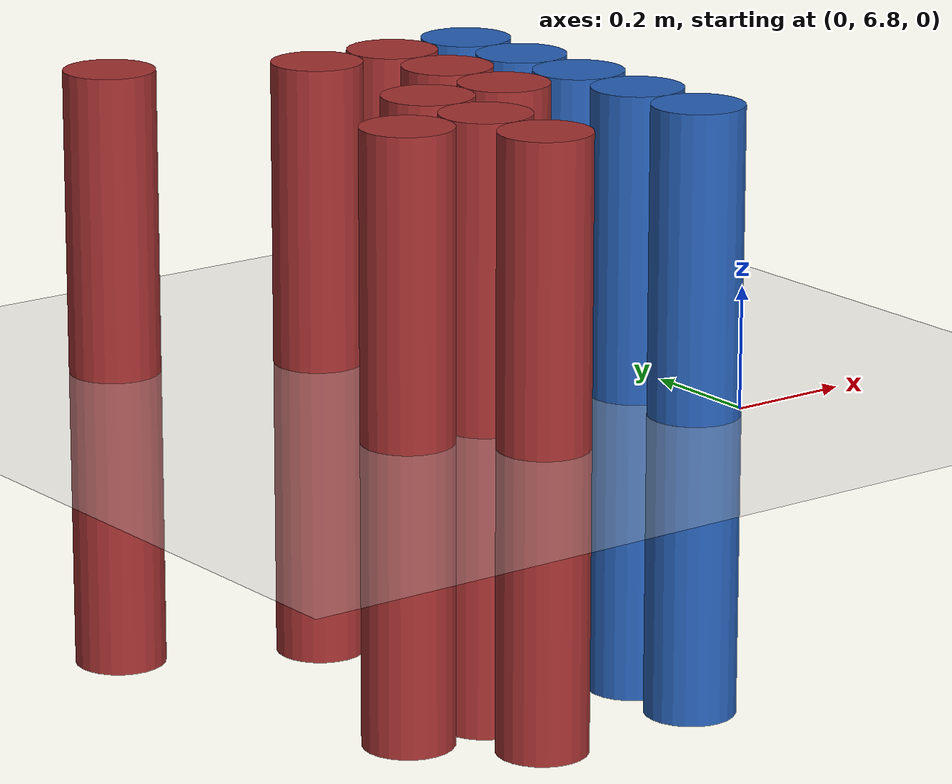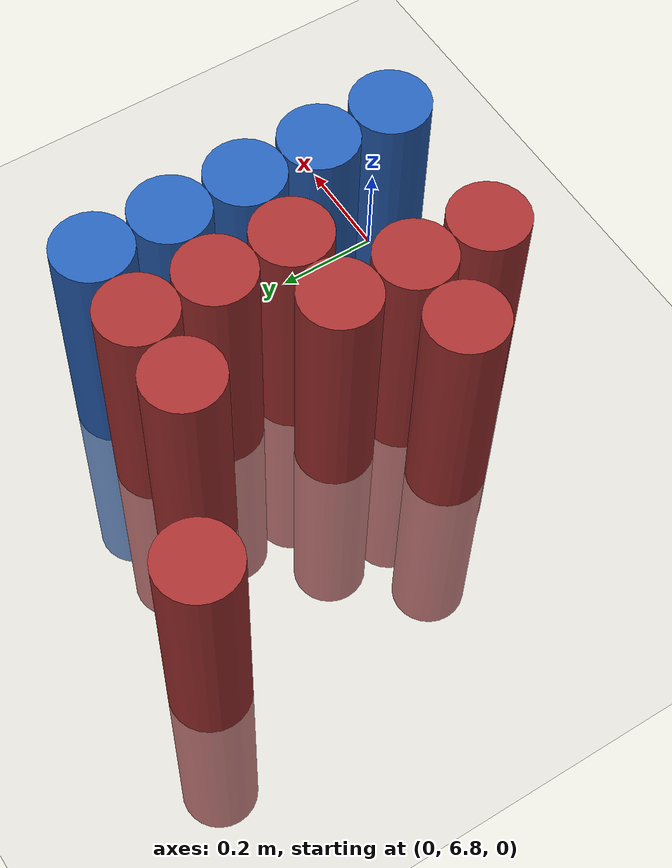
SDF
<sdf version="1.6">
 <world name="default">
  <model name="ground_plane">
   <static>1</static>
   <link name="link">
    <collision name="collision">
     <geometry><plane><normal>0 0 1</normal><size>100 100</size></plane></geometry>
     <surface><friction><ode><mu>100</mu><mu2>50</mu2></ode></friction></surface>
    </collision>
    <visual name="visual">
     <cast_shadows>0</cast_shadows>
     <geometry><plane><normal>0 0 1</normal><size>100 100</size></plane></geometry>
     <material>
      <script><uri>file://media/materials/scripts/gazebo.material</uri><name>Gazebo/Grey</name></script>
     </material>
    </visual>
   </link>
  </model>
  <model name="unit_cylinder_160">
   <static>1</static>
   <pose>-0.675000 7.575000 0.000000 0.000000 0.000000 0.000000</pose>
   <link name="link">
    <inertial>
     <mass>1</mass>
     <inertia><ixx>0.145833</ixx><ixy>0</ixy><ixz>0</ixz><iyy>0.145833</iyy><iyz>0</iyz><izz>0.125</izz></inertia>
    </inertial>
    <collision name="collision">
     <geometry><cylinder><radius>0.075000</radius><length>1</length></cylinder></geometry>
    </collision>
    <visual name="visual">
     <geometry><cylinder><radius>0.075000</radius><length>1</length></cylinder></geometry>
     <material>
      <ambient>0.648000 0.192000 0.192000 1</ambient>
      <diffuse>0.648000 0.192000 0.192000 1</diffuse>
     </material>
     <material>
      <script><name>Gazebo/Grey</name><uri>file://media/materials/scripts/gazebo.material</uri></script>
     </material>
    </visual>
   </link>
  </model>
  <model name="unit_cylinder_165">
   <static>1</static>
   <pose>-0.525000 6.975000 0.000000 0.000000 0.000000 0.000000</pose>
   <link name="link">
    <inertial>
     <mass>1</mass>
     <inertia><ixx>0.145833</ixx><ixy>0</ixy><ixz>0</ixz><iyy>0.145833</iyy><iyz>0</iyz><izz>0.125</izz></inertia>
    </inertial>
    <collision name="collision">
     <geometry><cylinder><radius>0.075000</radius><length>1</length></cylinder></geometry>
    </collision>
    <visual name="visual">
     <geometry><cylinder><radius>0.075000</radius><length>1</length></cylinder></geometry>
     <material>
      <ambient>0.648000 0.192000 0.192000 1</ambient>
      <diffuse>0.648000 0.192000 0.192000 1</diffuse>
     </material>
     <material>
      <script><name>Gazebo/Grey</name><uri>file://media/materials/scripts/gazebo.material</uri></script>
     </material>
    </visual>
   </link>
  </model>
  <model name="unit_cylinder_171">
   <static>1</static>
   <pose>-0.375000 6.825000 0.000000 0.000000 0.000000 0.000000</pose>
   <link name="link">
    <inertial>
     <mass>1</mass>
     <inertia><ixx>0.145833</ixx><ixy>0</ixy><ixz>0</ixz><iyy>0.145833</iyy><iyz>0</iyz><izz>0.125</izz></inertia>
    </inertial>
    <collision name="collision">
     <geometry><cylinder><radius>0.075000</radius><length>1</length></cylinder></geometry>
    </collision>
    <visual name="visual">
     <geometry><cylinder><radius>0.075000</radius><length>1</length></cylinder></geometry>
     <material>
      <ambient>0.648000 0.192000 0.192000 1</ambient>
      <diffuse>0.648000 0.192000 0.192000 1</diffuse>
     </material>
     <material>
      <script><name>Gazebo/Grey</name><uri>file://media/materials/scripts/gazebo.material</uri></script>
     </material>
    </visual>
   </link>
  </model>
  <model name="unit_cylinder_172">
   <static>1</static>
   <pose>-0.375000 6.975000 0.000000 0.000000 0.000000 0.000000</pose>
   <link name="link">
    <inertial>
     <mass>1</mass>
     <inertia><ixx>0.145833</ixx><ixy>0</ixy><ixz>0</ixz><iyy>0.145833</iyy><iyz>0</iyz><izz>0.125</izz></inertia>
    </inertial>
    <collision name="collision">
     <geometry><cylinder><radius>0.075000</radius><length>1</length></cylinder></geometry>
    </collision>
    <visual name="visual">
     <geometry><cylinder><radius>0.075000</radius><length>1</length></cylinder></geometry>
     <material>
      <ambient>0.648000 0.192000 0.192000 1</ambient>
      <diffuse>0.648000 0.192000 0.192000 1</diffuse>
     </material>
     <material>
      <script><name>Gazebo/Grey</name><uri>file://media/materials/scripts/gazebo.material</uri></script>
     </material>
    </visual>
   </link>
  </model>
  <model name="unit_cylinder_173">
   <static>1</static>
   <pose>-0.375000 7.125000 0.000000 0.000000 0.000000 0.000000</pose>
   <link name="link">
    <inertial>
     <mass>1</mass>
     <inertia><ixx>0.145833</ixx><ixy>0</ixy><ixz>0</ixz><iyy>0.145833</iyy><iyz>0</iyz><izz>0.125</izz></inertia>
    </inertial>
    <collision name="collision">
     <geometry><cylinder><radius>0.075000</radius><length>1</length></cylinder></geometry>
    </collision>
    <visual name="visual">
     <geometry><cylinder><radius>0.075000</radius><length>1</length></cylinder></geometry>
     <material>
      <ambient>0.648000 0.192000 0.192000 1</ambient>
      <diffuse>0.648000 0.192000 0.192000 1</diffuse>
     </material>
     <material>
      <script><name>Gazebo/Grey</name><uri>file://media/materials/scripts/gazebo.material</uri></script>
     </material>
    </visual>
   </link>
  </model>
  <model name="unit_cylinder_174">
   <static>1</static>
   <pose>-0.375000 7.425000 0.000000 0.000000 0.000000 0.000000</pose>
   <link name="link">
    <inertial>
     <mass>1</mass>
     <inertia><ixx>0.145833</ixx><ixy>0</ixy><ixz>0</ixz><iyy>0.145833</iyy><iyz>0</iyz><izz>0.125</izz></inertia>
    </inertial>
    <collision name="collision">
     <geometry><cylinder><radius>0.075000</radius><length>1</length></cylinder></geometry>
    </collision>
    <visual name="visual">
     <geometry><cylinder><radius>0.075000</radius><length>1</length></cylinder></geometry>
     <material>
      <ambient>0.648000 0.192000 0.192000 1</ambient>
      <diffuse>0.648000 0.192000 0.192000 1</diffuse>
     </material>
     <material>
      <script><name>Gazebo/Grey</name><uri>file://media/materials/scripts/gazebo.material</uri></script>
     </material>
    </visual>
   </link>
  </model>
  <model name="unit_cylinder_185">
   <static>1</static>
   <pose>-0.225000 7.125000 0.000000 0.000000 0.000000 0.000000</pose>
   <link name="link">
    <inertial>
     <mass>1</mass>
     <inertia><ixx>0.145833</ixx><ixy>0</ixy><ixz>0</ixz><iyy>0.145833</iyy><iyz>0</iyz><izz>0.125</izz></inertia>
    </inertial>
    <collision name="collision">
     <geometry><cylinder><radius>0.075000</radius><length>1</length></cylinder></geometry>
    </collision>
    <visual name="visual">
     <geometry><cylinder><radius>0.075000</radius><length>1</length></cylinder></geometry>
     <material>
      <ambient>0.648000 0.192000 0.192000 1</ambient>
      <diffuse>0.648000 0.192000 0.192000 1</diffuse>
     </material>
     <material>
      <script><name>Gazebo/Grey</name><uri>file://media/materials/scripts/gazebo.material</uri></script>
     </material>
    </visual>
   </link>
  </model>
  <model name="unit_cylinder_186">
   <static>1</static>
   <pose>-0.225000 7.275000 0.000000 0.000000 0.000000 0.000000</pose>
   <link name="link">
    <inertial>
     <mass>1</mass>
     <inertia><ixx>0.145833</ixx><ixy>0</ixy><ixz>0</ixz><iyy>0.145833</iyy><iyz>0</iyz><izz>0.125</izz></inertia>
    </inertial>
    <collision name="collision">
     <geometry><cylinder><radius>0.075000</radius><length>1</length></cylinder></geometry>
    </collision>
    <visual name="visual">
     <geometry><cylinder><radius>0.075000</radius><length>1</length></cylinder></geometry>
     <material>
      <ambient>0.648000 0.192000 0.192000 1</ambient>
      <diffuse>0.648000 0.192000 0.192000 1</diffuse>
     </material>
     <material>
      <script><name>Gazebo/Grey</name><uri>file://media/materials/scripts/gazebo.material</uri></script>
     </material>
    </visual>
   </link>
  </model>
  <model name="unit_cylinder_187">
   <static>1</static>
   <pose>-0.225000 7.425000 0.000000 0.000000 0.000000 0.000000</pose>
   <link name="link">
    <inertial>
     <mass>1</mass>
     <inertia><ixx>0.145833</ixx><ixy>0</ixy><ixz>0</ixz><iyy>0.145833</iyy><iyz>0</iyz><izz>0.125</izz></inertia>
    </inertial>
    <collision name="collision">
     <geometry><cylinder><radius>0.075000</radius><length>1</length></cylinder></geometry>
    </collision>
    <visual name="visual">
     <geometry><cylinder><radius>0.075000</radius><length>1</length></cylinder></geometry>
     <material>
      <ambient>0.648000 0.192000 0.192000 1</ambient>
      <diffuse>0.648000 0.192000 0.192000 1</diffuse>
     </material>
     <material>
      <script><name>Gazebo/Grey</name><uri>file://media/materials/scripts/gazebo.material</uri></script>
     </material>
    </visual>
   </link>
  </model>
  <model name="unit_cylinder_203">
   <static>1</static>
   <pose>-0.075000 6.825000 0.000000 0.000000 0.000000 0.000000</pose>
   <link name="link">
    <inertial>
     <mass>1</mass>
     <inertia><ixx>0.145833</ixx><ixy>0</ixy><ixz>0</ixz><iyy>0.145833</iyy><iyz>0</iyz><izz>0.125</izz></inertia>
    </inertial>
    <collision name="collision">
     <geometry><cylinder><radius>0.075000</radius><length>1</length></cylinder></geometry>
    </collision>
    <visual name="visual">
     <geometry><cylinder><radius>0.075000</radius><length>1</length></cylinder></geometry>
     <material>
      <ambient>0.152000 0.379000 0.720000 1</ambient>
      <diffuse>0.152000 0.379000 0.720000 1</diffuse>
     </material>
     <material>
      <script><name>Gazebo/Grey</name><uri>file://media/materials/scripts/gazebo.material</uri></script>
     </material>
    </visual>
   </link>
  </model>
  <model name="unit_cylinder_204">
   <static>1</static>
   <pose>-0.075000 6.975000 0.000000 0.000000 0.000000 0.000000</pose>
   <link name="link">
    <inertial>
     <mass>1</mass>
     <inertia><ixx>0.145833</ixx><ixy>0</ixy><ixz>0</ixz><iyy>0.145833</iyy><iyz>0</iyz><izz>0.125</izz></inertia>
    </inertial>
    <collision name="collision">
     <geometry><cylinder><radius>0.075000</radius><length>1</length></cylinder></geometry>
    </collision>
    <visual name="visual">
     <geometry><cylinder><radius>0.075000</radius><length>1</length></cylinder></geometry>
     <material>
      <ambient>0.152000 0.379000 0.720000 1</ambient>
      <diffuse>0.152000 0.379000 0.720000 1</diffuse>
     </material>
     <material>
      <script><name>Gazebo/Grey</name><uri>file://media/materials/scripts/gazebo.material</uri></script>
     </material>
    </visual>
   </link>
  </model>
  <model name="unit_cylinder_205">
   <static>1</static>
   <pose>-0.075000 7.125000 0.000000 0.000000 0.000000 0.000000</pose>
   <link name="link">
    <inertial>
     <mass>1</mass>
     <inertia><ixx>0.145833</ixx><ixy>0</ixy><ixz>0</ixz><iyy>0.145833</iyy><iyz>0</iyz><izz>0.125</izz></inertia>
    </inertial>
    <collision name="collision">
     <geometry><cylinder><radius>0.075000</radius><length>1</length></cylinder></geometry>
    </collision>
    <visual name="visual">
     <geometry><cylinder><radius>0.075000</radius><length>1</length></cylinder></geometry>
     <material>
      <ambient>0.152000 0.379000 0.720000 1</ambient>
      <diffuse>0.152000 0.379000 0.720000 1</diffuse>
     </material>
     <material>
      <script><name>Gazebo/Grey</name><uri>file://media/materials/scripts/gazebo.material</uri></script>
     </material>
    </visual>
   </link>
  </model>
  <model name="unit_cylinder_206">
   <static>1</static>
   <pose>-0.075000 7.275000 0.000000 0.000000 0.000000 0.000000</pose>
   <link name="link">
    <inertial>
     <mass>1</mass>
     <inertia><ixx>0.145833</ixx><ixy>0</ixy><ixz>0</ixz><iyy>0.145833</iyy><iyz>0</iyz><izz>0.125</izz></inertia>
    </inertial>
    <collision name="collision">
     <geometry><cylinder><radius>0.075000</radius><length>1</length></cylinder></geometry>
    </collision>
    <visual name="visual">
     <geometry><cylinder><radius>0.075000</radius><length>1</length></cylinder></geometry>
     <material>
      <ambient>0.152000 0.379000 0.720000 1</ambient>
      <diffuse>0.152000 0.379000 0.720000 1</diffuse>
     </material>
     <material>
      <script><name>Gazebo/Grey</name><uri>file://media/materials/scripts/gazebo.material</uri></script>
     </material>
    </visual>
   </link>
  </model>
  <model name="unit_cylinder_207">
   <static>1</static>
   <pose>-0.075000 7.425000 0.000000 0.000000 0.000000 0.000000</pose>
   <link name="link">
    <inertial>
     <mass>1</mass>
     <inertia><ixx>0.145833</ixx><ixy>0</ixy><ixz>0</ixz><iyy>0.145833</iyy><iyz>0</iyz><izz>0.125</izz></inertia>
    </inertial>
    <collision name="collision">
     <geometry><cylinder><radius>0.075000</radius><length>1</length></cylinder></geometry>
    </collision>
    <visual name="visual">
     <geometry><cylinder><radius>0.075000</radius><length>1</length></cylinder></geometry>
     <material>
      <ambient>0.152000 0.379000 0.720000 1</ambient>
      <diffuse>0.152000 0.379000 0.720000 1</diffuse>
     </material>
     <material>
      <script><name>Gazebo/Grey</name><uri>file://media/materials/scripts/gazebo.material</uri></script>
     </material>
    </visual>
   </link>
  </model>
 </world>
</sdf>
